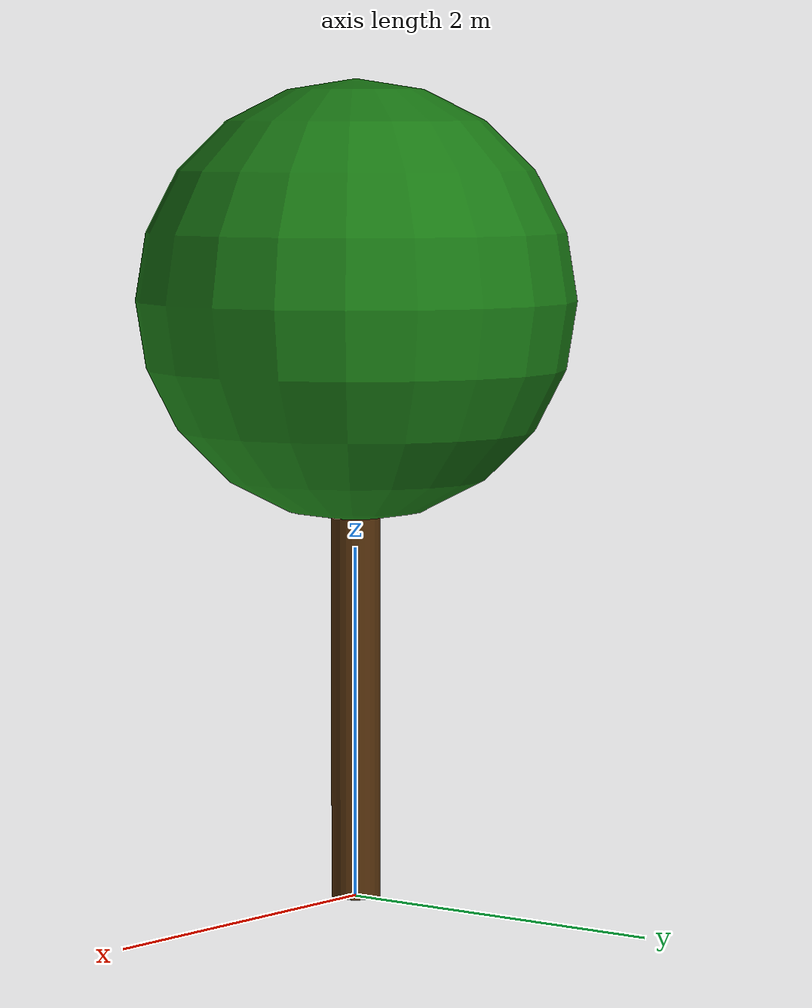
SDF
<?xml version="1.0" ?>
<!-- Simple tree: brown trunk cylinder + green foliage sphere. Origin at ground level -->
<sdf version="1.6">
  <model name="tree">
    <static>true</static>
    <link name="link">

      <!-- Trunk collision -->
      <collision name="col_trunk">
        <pose>0 0 1.2 0 0 0</pose>
        <geometry><cylinder><radius>0.14</radius><length>2.4</length></cylinder></geometry>
      </collision>

      <!-- Foliage collision (sphere approximation) -->
      <collision name="col_foliage">
        <pose>0 0 3.4 0 0 0</pose>
        <geometry><sphere><radius>1.25</radius></sphere></geometry>
      </collision>

      <!-- Trunk -->
      <visual name="trunk">
        <pose>0 0 1.2 0 0 0</pose>
        <geometry><cylinder><radius>0.14</radius><length>2.4</length></cylinder></geometry>
        <material>
          <ambient>0.32 0.18 0.04 1</ambient>
          <diffuse>0.32 0.18 0.04 1</diffuse>
          <specular>0.05 0.05 0.05 1</specular>
        </material>
      </visual>

      <!-- Foliage -->
      <visual name="foliage">
        <pose>0 0 3.4 0 0 0</pose>
        <geometry><sphere><radius>1.25</radius></sphere></geometry>
        <material>
          <ambient>0.10 0.48 0.08 1</ambient>
          <diffuse>0.10 0.48 0.08 1</diffuse>
          <specular>0.05 0.1 0.05 1</specular>
        </material>
      </visual>

    </link>
  </model>
</sdf>
